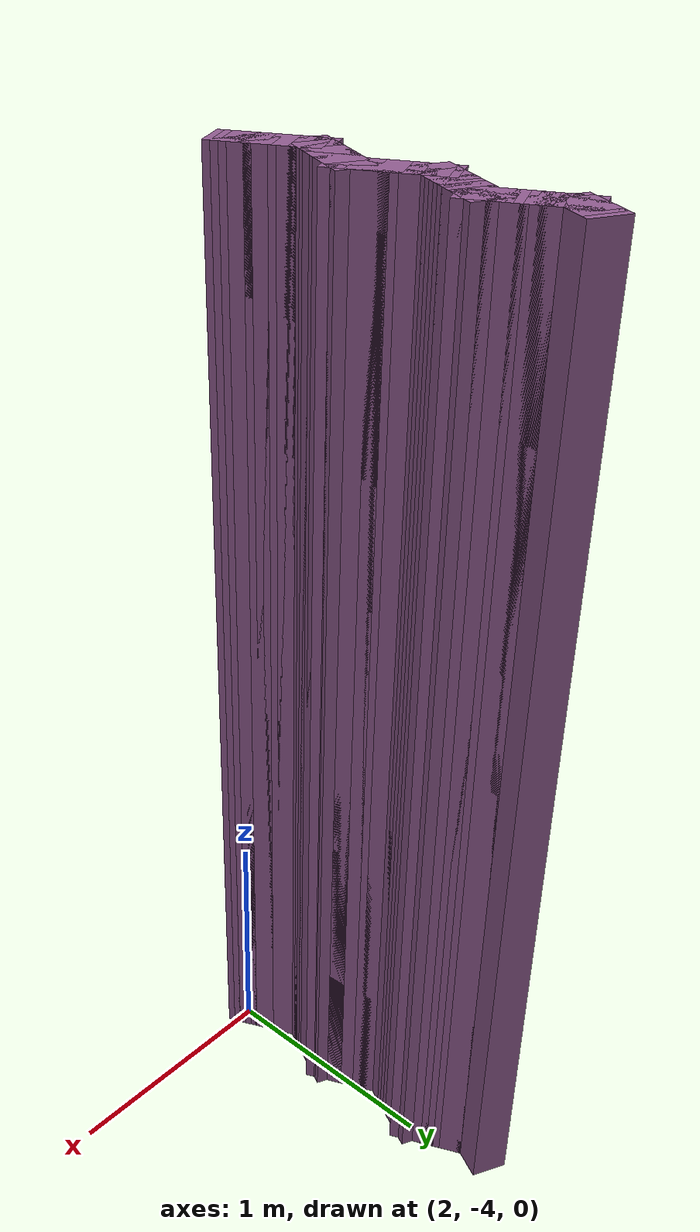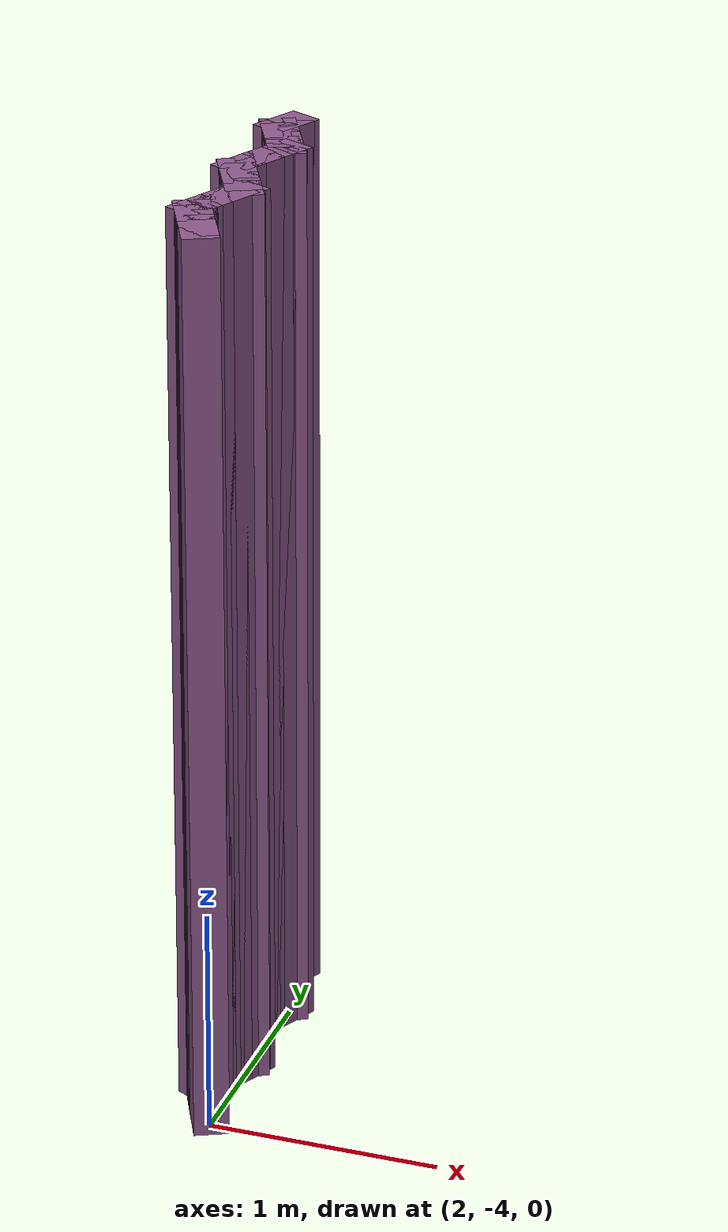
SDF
<sdf version="1.9">
 <world name="p5_serrated">
  <model name="wall_000">
   <static>true</static>
   <pose>1.9940 -3.9875 2.0000 0 0 2.01832</pose>
   <link name="link">
    <collision name="c"><geometry><box><size>0.1777 0.1500 4.0000</size></box></geometry></collision>
    <visual name="v">
     <geometry><box><size>0.1777 0.1500 4.0000</size></box></geometry>
     <material><ambient>0.55 0.35 0.55 1</ambient><diffuse>0.55 0.35 0.55 1</diffuse></material>
    </visual>
   </link>
  </model>
  <model name="wall_001">
   <static>true</static>
   <pose>1.9820 -3.9625 2.0000 0 0 2.01832</pose>
   <link name="link">
    <collision name="c"><geometry><box><size>0.1777 0.1500 4.0000</size></box></geometry></collision>
    <visual name="v">
     <geometry><box><size>0.1777 0.1500 4.0000</size></box></geometry>
     <material><ambient>0.55 0.35 0.55 1</ambient><diffuse>0.55 0.35 0.55 1</diffuse></material>
    </visual>
   </link>
  </model>
  <model name="wall_002">
   <static>true</static>
   <pose>1.9700 -3.9375 2.0000 0 0 2.01832</pose>
   <link name="link">
    <collision name="c"><geometry><box><size>0.1777 0.1500 4.0000</size></box></geometry></collision>
    <visual name="v">
     <geometry><box><size>0.1777 0.1500 4.0000</size></box></geometry>
     <material><ambient>0.55 0.35 0.55 1</ambient><diffuse>0.55 0.35 0.55 1</diffuse></material>
    </visual>
   </link>
  </model>
  <model name="wall_003">
   <static>true</static>
   <pose>1.9580 -3.9125 2.0000 0 0 2.01832</pose>
   <link name="link">
    <collision name="c"><geometry><box><size>0.1777 0.1500 4.0000</size></box></geometry></collision>
    <visual name="v">
     <geometry><box><size>0.1777 0.1500 4.0000</size></box></geometry>
     <material><ambient>0.55 0.35 0.55 1</ambient><diffuse>0.55 0.35 0.55 1</diffuse></material>
    </visual>
   </link>
  </model>
  <model name="wall_004">
   <static>true</static>
   <pose>1.9460 -3.8875 2.0000 0 0 2.01832</pose>
   <link name="link">
    <collision name="c"><geometry><box><size>0.1777 0.1500 4.0000</size></box></geometry></collision>
    <visual name="v">
     <geometry><box><size>0.1777 0.1500 4.0000</size></box></geometry>
     <material><ambient>0.55 0.35 0.55 1</ambient><diffuse>0.55 0.35 0.55 1</diffuse></material>
    </visual>
   </link>
  </model>
  <model name="wall_005">
   <static>true</static>
   <pose>1.9340 -3.8625 2.0000 0 0 2.01832</pose>
   <link name="link">
    <collision name="c"><geometry><box><size>0.1777 0.1500 4.0000</size></box></geometry></collision>
    <visual name="v">
     <geometry><box><size>0.1777 0.1500 4.0000</size></box></geometry>
     <material><ambient>0.55 0.35 0.55 1</ambient><diffuse>0.55 0.35 0.55 1</diffuse></material>
    </visual>
   </link>
  </model>
  <model name="wall_006">
   <static>true</static>
   <pose>1.9220 -3.8375 2.0000 0 0 2.01832</pose>
   <link name="link">
    <collision name="c"><geometry><box><size>0.1777 0.1500 4.0000</size></box></geometry></collision>
    <visual name="v">
     <geometry><box><size>0.1777 0.1500 4.0000</size></box></geometry>
     <material><ambient>0.55 0.35 0.55 1</ambient><diffuse>0.55 0.35 0.55 1</diffuse></material>
    </visual>
   </link>
  </model>
  <model name="wall_007">
   <static>true</static>
   <pose>1.9100 -3.8125 2.0000 0 0 2.01832</pose>
   <link name="link">
    <collision name="c"><geometry><box><size>0.1777 0.1500 4.0000</size></box></geometry></collision>
    <visual name="v">
     <geometry><box><size>0.1777 0.1500 4.0000</size></box></geometry>
     <material><ambient>0.55 0.35 0.55 1</ambient><diffuse>0.55 0.35 0.55 1</diffuse></material>
    </visual>
   </link>
  </model>
  <model name="wall_008">
   <static>true</static>
   <pose>1.8980 -3.7875 2.0000 0 0 2.01832</pose>
   <link name="link">
    <collision name="c"><geometry><box><size>0.1777 0.1500 4.0000</size></box></geometry></collision>
    <visual name="v">
     <geometry><box><size>0.1777 0.1500 4.0000</size></box></geometry>
     <material><ambient>0.55 0.35 0.55 1</ambient><diffuse>0.55 0.35 0.55 1</diffuse></material>
    </visual>
   </link>
  </model>
  <model name="wall_009">
   <static>true</static>
   <pose>1.8860 -3.7625 2.0000 0 0 2.01832</pose>
   <link name="link">
    <collision name="c"><geometry><box><size>0.1777 0.1500 4.0000</size></box></geometry></collision>
    <visual name="v">
     <geometry><box><size>0.1777 0.1500 4.0000</size></box></geometry>
     <material><ambient>0.55 0.35 0.55 1</ambient><diffuse>0.55 0.35 0.55 1</diffuse></material>
    </visual>
   </link>
  </model>
  <model name="wall_010">
   <static>true</static>
   <pose>1.8860 -3.7375 2.0000 0 0 1.12328</pose>
   <link name="link">
    <collision name="c"><geometry><box><size>0.1777 0.1500 4.0000</size></box></geometry></collision>
    <visual name="v">
     <geometry><box><size>0.1777 0.1500 4.0000</size></box></geometry>
     <material><ambient>0.55 0.35 0.55 1</ambient><diffuse>0.55 0.35 0.55 1</diffuse></material>
    </visual>
   </link>
  </model>
  <model name="wall_011">
   <static>true</static>
   <pose>1.8980 -3.7125 2.0000 0 0 1.12328</pose>
   <link name="link">
    <collision name="c"><geometry><box><size>0.1777 0.1500 4.0000</size></box></geometry></collision>
    <visual name="v">
     <geometry><box><size>0.1777 0.1500 4.0000</size></box></geometry>
     <material><ambient>0.55 0.35 0.55 1</ambient><diffuse>0.55 0.35 0.55 1</diffuse></material>
    </visual>
   </link>
  </model>
  <model name="wall_012">
   <static>true</static>
   <pose>1.9100 -3.6875 2.0000 0 0 1.12328</pose>
   <link name="link">
    <collision name="c"><geometry><box><size>0.1777 0.1500 4.0000</size></box></geometry></collision>
    <visual name="v">
     <geometry><box><size>0.1777 0.1500 4.0000</size></box></geometry>
     <material><ambient>0.55 0.35 0.55 1</ambient><diffuse>0.55 0.35 0.55 1</diffuse></material>
    </visual>
   </link>
  </model>
  <model name="wall_013">
   <static>true</static>
   <pose>1.9220 -3.6625 2.0000 0 0 1.12328</pose>
   <link name="link">
    <collision name="c"><geometry><box><size>0.1777 0.1500 4.0000</size></box></geometry></collision>
    <visual name="v">
     <geometry><box><size>0.1777 0.1500 4.0000</size></box></geometry>
     <material><ambient>0.55 0.35 0.55 1</ambient><diffuse>0.55 0.35 0.55 1</diffuse></material>
    </visual>
   </link>
  </model>
  <model name="wall_014">
   <static>true</static>
   <pose>1.9340 -3.6375 2.0000 0 0 1.12328</pose>
   <link name="link">
    <collision name="c"><geometry><box><size>0.1777 0.1500 4.0000</size></box></geometry></collision>
    <visual name="v">
     <geometry><box><size>0.1777 0.1500 4.0000</size></box></geometry>
     <material><ambient>0.55 0.35 0.55 1</ambient><diffuse>0.55 0.35 0.55 1</diffuse></material>
    </visual>
   </link>
  </model>
  <model name="wall_015">
   <static>true</static>
   <pose>1.9460 -3.6125 2.0000 0 0 1.12328</pose>
   <link name="link">
    <collision name="c"><geometry><box><size>0.1777 0.1500 4.0000</size></box></geometry></collision>
    <visual name="v">
     <geometry><box><size>0.1777 0.1500 4.0000</size></box></geometry>
     <material><ambient>0.55 0.35 0.55 1</ambient><diffuse>0.55 0.35 0.55 1</diffuse></material>
    </visual>
   </link>
  </model>
  <model name="wall_016">
   <static>true</static>
   <pose>1.9580 -3.5875 2.0000 0 0 1.12328</pose>
   <link name="link">
    <collision name="c"><geometry><box><size>0.1777 0.1500 4.0000</size></box></geometry></collision>
    <visual name="v">
     <geometry><box><size>0.1777 0.1500 4.0000</size></box></geometry>
     <material><ambient>0.55 0.35 0.55 1</ambient><diffuse>0.55 0.35 0.55 1</diffuse></material>
    </visual>
   </link>
  </model>
  <model name="wall_017">
   <static>true</static>
   <pose>1.9700 -3.5625 2.0000 0 0 1.12328</pose>
   <link name="link">
    <collision name="c"><geometry><box><size>0.1777 0.1500 4.0000</size></box></geometry></collision>
    <visual name="v">
     <geometry><box><size>0.1777 0.1500 4.0000</size></box></geometry>
     <material><ambient>0.55 0.35 0.55 1</ambient><diffuse>0.55 0.35 0.55 1</diffuse></material>
    </visual>
   </link>
  </model>
  <model name="wall_018">
   <static>true</static>
   <pose>1.9820 -3.5375 2.0000 0 0 1.12328</pose>
   <link name="link">
    <collision name="c"><geometry><box><size>0.1777 0.1500 4.0000</size></box></geometry></collision>
    <visual name="v">
     <geometry><box><size>0.1777 0.1500 4.0000</size></box></geometry>
     <material><ambient>0.55 0.35 0.55 1</ambient><diffuse>0.55 0.35 0.55 1</diffuse></material>
    </visual>
   </link>
  </model>
  <model name="wall_019">
   <static>true</static>
   <pose>1.9940 -3.5125 2.0000 0 0 1.12328</pose>
   <link name="link">
    <collision name="c"><geometry><box><size>0.1777 0.1500 4.0000</size></box></geometry></collision>
    <visual name="v">
     <geometry><box><size>0.1777 0.1500 4.0000</size></box></geometry>
     <material><ambient>0.55 0.35 0.55 1</ambient><diffuse>0.55 0.35 0.55 1</diffuse></material>
    </visual>
   </link>
  </model>
  <model name="wall_020">
   <static>true</static>
   <pose>1.9940 -3.4875 2.0000 0 0 2.01832</pose>
   <link name="link">
    <collision name="c"><geometry><box><size>0.1777 0.1500 4.0000</size></box></geometry></collision>
    <visual name="v">
     <geometry><box><size>0.1777 0.1500 4.0000</size></box></geometry>
     <material><ambient>0.55 0.35 0.55 1</ambient><diffuse>0.55 0.35 0.55 1</diffuse></material>
    </visual>
   </link>
  </model>
  <model name="wall_021">
   <static>true</static>
   <pose>1.9820 -3.4625 2.0000 0 0 2.01832</pose>
   <link name="link">
    <collision name="c"><geometry><box><size>0.1777 0.1500 4.0000</size></box></geometry></collision>
    <visual name="v">
     <geometry><box><size>0.1777 0.1500 4.0000</size></box></geometry>
     <material><ambient>0.55 0.35 0.55 1</ambient><diffuse>0.55 0.35 0.55 1</diffuse></material>
    </visual>
   </link>
  </model>
  <model name="wall_022">
   <static>true</static>
   <pose>1.9700 -3.4375 2.0000 0 0 2.01832</pose>
   <link name="link">
    <collision name="c"><geometry><box><size>0.1777 0.1500 4.0000</size></box></geometry></collision>
    <visual name="v">
     <geometry><box><size>0.1777 0.1500 4.0000</size></box></geometry>
     <material><ambient>0.55 0.35 0.55 1</ambient><diffuse>0.55 0.35 0.55 1</diffuse></material>
    </visual>
   </link>
  </model>
  <model name="wall_023">
   <static>true</static>
   <pose>1.9580 -3.4125 2.0000 0 0 2.01832</pose>
   <link name="link">
    <collision name="c"><geometry><box><size>0.1777 0.1500 4.0000</size></box></geometry></collision>
    <visual name="v">
     <geometry><box><size>0.1777 0.1500 4.0000</size></box></geometry>
     <material><ambient>0.55 0.35 0.55 1</ambient><diffuse>0.55 0.35 0.55 1</diffuse></material>
    </visual>
   </link>
  </model>
  <model name="wall_024">
   <static>true</static>
   <pose>1.9460 -3.3875 2.0000 0 0 2.01832</pose>
   <link name="link">
    <collision name="c"><geometry><box><size>0.1777 0.1500 4.0000</size></box></geometry></collision>
    <visual name="v">
     <geometry><box><size>0.1777 0.1500 4.0000</size></box></geometry>
     <material><ambient>0.55 0.35 0.55 1</ambient><diffuse>0.55 0.35 0.55 1</diffuse></material>
    </visual>
   </link>
  </model>
  <model name="wall_025">
   <static>true</static>
   <pose>1.9340 -3.3625 2.0000 0 0 2.01832</pose>
   <link name="link">
    <collision name="c"><geometry><box><size>0.1777 0.1500 4.0000</size></box></geometry></collision>
    <visual name="v">
     <geometry><box><size>0.1777 0.1500 4.0000</size></box></geometry>
     <material><ambient>0.55 0.35 0.55 1</ambient><diffuse>0.55 0.35 0.55 1</diffuse></material>
    </visual>
   </link>
  </model>
  <model name="wall_026">
   <static>true</static>
   <pose>1.9220 -3.3375 2.0000 0 0 2.01832</pose>
   <link name="link">
    <collision name="c"><geometry><box><size>0.1777 0.1500 4.0000</size></box></geometry></collision>
    <visual name="v">
     <geometry><box><size>0.1777 0.1500 4.0000</size></box></geometry>
     <material><ambient>0.55 0.35 0.55 1</ambient><diffuse>0.55 0.35 0.55 1</diffuse></material>
    </visual>
   </link>
  </model>
  <model name="wall_027">
   <static>true</static>
   <pose>1.9100 -3.3125 2.0000 0 0 2.01832</pose>
   <link name="link">
    <collision name="c"><geometry><box><size>0.1777 0.1500 4.0000</size></box></geometry></collision>
    <visual name="v">
     <geometry><box><size>0.1777 0.1500 4.0000</size></box></geometry>
     <material><ambient>0.55 0.35 0.55 1</ambient><diffuse>0.55 0.35 0.55 1</diffuse></material>
    </visual>
   </link>
  </model>
  <model name="wall_028">
   <static>true</static>
   <pose>1.8980 -3.2875 2.0000 0 0 2.01832</pose>
   <link name="link">
    <collision name="c"><geometry><box><size>0.1777 0.1500 4.0000</size></box></geometry></collision>
    <visual name="v">
     <geometry><box><size>0.1777 0.1500 4.0000</size></box></geometry>
     <material><ambient>0.55 0.35 0.55 1</ambient><diffuse>0.55 0.35 0.55 1</diffuse></material>
    </visual>
   </link>
  </model>
  <model name="wall_029">
   <static>true</static>
   <pose>1.8860 -3.2625 2.0000 0 0 2.01832</pose>
   <link name="link">
    <collision name="c"><geometry><box><size>0.1777 0.1500 4.0000</size></box></geometry></collision>
    <visual name="v">
     <geometry><box><size>0.1777 0.1500 4.0000</size></box></geometry>
     <material><ambient>0.55 0.35 0.55 1</ambient><diffuse>0.55 0.35 0.55 1</diffuse></material>
    </visual>
   </link>
  </model>
  <model name="wall_030">
   <static>true</static>
   <pose>1.8860 -3.2375 2.0000 0 0 1.12328</pose>
   <link name="link">
    <collision name="c"><geometry><box><size>0.1777 0.1500 4.0000</size></box></geometry></collision>
    <visual name="v">
     <geometry><box><size>0.1777 0.1500 4.0000</size></box></geometry>
     <material><ambient>0.55 0.35 0.55 1</ambient><diffuse>0.55 0.35 0.55 1</diffuse></material>
    </visual>
   </link>
  </model>
  <model name="wall_031">
   <static>true</static>
   <pose>1.8980 -3.2125 2.0000 0 0 1.12328</pose>
   <link name="link">
    <collision name="c"><geometry><box><size>0.1777 0.1500 4.0000</size></box></geometry></collision>
    <visual name="v">
     <geometry><box><size>0.1777 0.1500 4.0000</size></box></geometry>
     <material><ambient>0.55 0.35 0.55 1</ambient><diffuse>0.55 0.35 0.55 1</diffuse></material>
    </visual>
   </link>
  </model>
  <model name="wall_032">
   <static>true</static>
   <pose>1.9100 -3.1875 2.0000 0 0 1.12328</pose>
   <link name="link">
    <collision name="c"><geometry><box><size>0.1777 0.1500 4.0000</size></box></geometry></collision>
    <visual name="v">
     <geometry><box><size>0.1777 0.1500 4.0000</size></box></geometry>
     <material><ambient>0.55 0.35 0.55 1</ambient><diffuse>0.55 0.35 0.55 1</diffuse></material>
    </visual>
   </link>
  </model>
  <model name="wall_033">
   <static>true</static>
   <pose>1.9220 -3.1625 2.0000 0 0 1.12328</pose>
   <link name="link">
    <collision name="c"><geometry><box><size>0.1777 0.1500 4.0000</size></box></geometry></collision>
    <visual name="v">
     <geometry><box><size>0.1777 0.1500 4.0000</size></box></geometry>
     <material><ambient>0.55 0.35 0.55 1</ambient><diffuse>0.55 0.35 0.55 1</diffuse></material>
    </visual>
   </link>
  </model>
  <model name="wall_034">
   <static>true</static>
   <pose>1.9340 -3.1375 2.0000 0 0 1.12328</pose>
   <link name="link">
    <collision name="c"><geometry><box><size>0.1777 0.1500 4.0000</size></box></geometry></collision>
    <visual name="v">
     <geometry><box><size>0.1777 0.1500 4.0000</size></box></geometry>
     <material><ambient>0.55 0.35 0.55 1</ambient><diffuse>0.55 0.35 0.55 1</diffuse></material>
    </visual>
   </link>
  </model>
  <model name="wall_035">
   <static>true</static>
   <pose>1.9460 -3.1125 2.0000 0 0 1.12328</pose>
   <link name="link">
    <collision name="c"><geometry><box><size>0.1777 0.1500 4.0000</size></box></geometry></collision>
    <visual name="v">
     <geometry><box><size>0.1777 0.1500 4.0000</size></box></geometry>
     <material><ambient>0.55 0.35 0.55 1</ambient><diffuse>0.55 0.35 0.55 1</diffuse></material>
    </visual>
   </link>
  </model>
  <model name="wall_036">
   <static>true</static>
   <pose>1.9580 -3.0875 2.0000 0 0 1.12328</pose>
   <link name="link">
    <collision name="c"><geometry><box><size>0.1777 0.1500 4.0000</size></box></geometry></collision>
    <visual name="v">
     <geometry><box><size>0.1777 0.1500 4.0000</size></box></geometry>
     <material><ambient>0.55 0.35 0.55 1</ambient><diffuse>0.55 0.35 0.55 1</diffuse></material>
    </visual>
   </link>
  </model>
  <model name="wall_037">
   <static>true</static>
   <pose>1.9700 -3.0625 2.0000 0 0 1.12328</pose>
   <link name="link">
    <collision name="c"><geometry><box><size>0.1777 0.1500 4.0000</size></box></geometry></collision>
    <visual name="v">
     <geometry><box><size>0.1777 0.1500 4.0000</size></box></geometry>
     <material><ambient>0.55 0.35 0.55 1</ambient><diffuse>0.55 0.35 0.55 1</diffuse></material>
    </visual>
   </link>
  </model>
  <model name="wall_038">
   <static>true</static>
   <pose>1.9820 -3.0375 2.0000 0 0 1.12328</pose>
   <link name="link">
    <collision name="c"><geometry><box><size>0.1777 0.1500 4.0000</size></box></geometry></collision>
    <visual name="v">
     <geometry><box><size>0.1777 0.1500 4.0000</size></box></geometry>
     <material><ambient>0.55 0.35 0.55 1</ambient><diffuse>0.55 0.35 0.55 1</diffuse></material>
    </visual>
   </link>
  </model>
  <model name="wall_039">
   <static>true</static>
   <pose>1.9940 -3.0125 2.0000 0 0 1.12328</pose>
   <link name="link">
    <collision name="c"><geometry><box><size>0.1777 0.1500 4.0000</size></box></geometry></collision>
    <visual name="v">
     <geometry><box><size>0.1777 0.1500 4.0000</size></box></geometry>
     <material><ambient>0.55 0.35 0.55 1</ambient><diffuse>0.55 0.35 0.55 1</diffuse></material>
    </visual>
   </link>
  </model>
  <model name="wall_040">
   <static>true</static>
   <pose>1.9940 -2.9875 2.0000 0 0 2.01832</pose>
   <link name="link">
    <collision name="c"><geometry><box><size>0.1777 0.1500 4.0000</size></box></geometry></collision>
    <visual name="v">
     <geometry><box><size>0.1777 0.1500 4.0000</size></box></geometry>
     <material><ambient>0.55 0.35 0.55 1</ambient><diffuse>0.55 0.35 0.55 1</diffuse></material>
    </visual>
   </link>
  </model>
  <model name="wall_041">
   <static>true</static>
   <pose>1.9820 -2.9625 2.0000 0 0 2.01832</pose>
   <link name="link">
    <collision name="c"><geometry><box><size>0.1777 0.1500 4.0000</size></box></geometry></collision>
    <visual name="v">
     <geometry><box><size>0.1777 0.1500 4.0000</size></box></geometry>
     <material><ambient>0.55 0.35 0.55 1</ambient><diffuse>0.55 0.35 0.55 1</diffuse></material>
    </visual>
   </link>
  </model>
  <model name="wall_042">
   <static>true</static>
   <pose>1.9700 -2.9375 2.0000 0 0 2.01832</pose>
   <link name="link">
    <collision name="c"><geometry><box><size>0.1777 0.1500 4.0000</size></box></geometry></collision>
    <visual name="v">
     <geometry><box><size>0.1777 0.1500 4.0000</size></box></geometry>
     <material><ambient>0.55 0.35 0.55 1</ambient><diffuse>0.55 0.35 0.55 1</diffuse></material>
    </visual>
   </link>
  </model>
  <model name="wall_043">
   <static>true</static>
   <pose>1.9580 -2.9125 2.0000 0 0 2.01832</pose>
   <link name="link">
    <collision name="c"><geometry><box><size>0.1777 0.1500 4.0000</size></box></geometry></collision>
    <visual name="v">
     <geometry><box><size>0.1777 0.1500 4.0000</size></box></geometry>
     <material><ambient>0.55 0.35 0.55 1</ambient><diffuse>0.55 0.35 0.55 1</diffuse></material>
    </visual>
   </link>
  </model>
  <model name="wall_044">
   <static>true</static>
   <pose>1.9460 -2.8875 2.0000 0 0 2.01832</pose>
   <link name="link">
    <collision name="c"><geometry><box><size>0.1777 0.1500 4.0000</size></box></geometry></collision>
    <visual name="v">
     <geometry><box><size>0.1777 0.1500 4.0000</size></box></geometry>
     <material><ambient>0.55 0.35 0.55 1</ambient><diffuse>0.55 0.35 0.55 1</diffuse></material>
    </visual>
   </link>
  </model>
  <model name="wall_045">
   <static>true</static>
   <pose>1.9340 -2.8625 2.0000 0 0 2.01832</pose>
   <link name="link">
    <collision name="c"><geometry><box><size>0.1777 0.1500 4.0000</size></box></geometry></collision>
    <visual name="v">
     <geometry><box><size>0.1777 0.1500 4.0000</size></box></geometry>
     <material><ambient>0.55 0.35 0.55 1</ambient><diffuse>0.55 0.35 0.55 1</diffuse></material>
    </visual>
   </link>
  </model>
  <model name="wall_046">
   <static>true</static>
   <pose>1.9220 -2.8375 2.0000 0 0 2.01832</pose>
   <link name="link">
    <collision name="c"><geometry><box><size>0.1777 0.1500 4.0000</size></box></geometry></collision>
    <visual name="v">
     <geometry><box><size>0.1777 0.1500 4.0000</size></box></geometry>
     <material><ambient>0.55 0.35 0.55 1</ambient><diffuse>0.55 0.35 0.55 1</diffuse></material>
    </visual>
   </link>
  </model>
  <model name="wall_047">
   <static>true</static>
   <pose>1.9100 -2.8125 2.0000 0 0 2.01832</pose>
   <link name="link">
    <collision name="c"><geometry><box><size>0.1777 0.1500 4.0000</size></box></geometry></collision>
    <visual name="v">
     <geometry><box><size>0.1777 0.1500 4.0000</size></box></geometry>
     <material><ambient>0.55 0.35 0.55 1</ambient><diffuse>0.55 0.35 0.55 1</diffuse></material>
    </visual>
   </link>
  </model>
  <model name="wall_048">
   <static>true</static>
   <pose>1.8980 -2.7875 2.0000 0 0 2.01832</pose>
   <link name="link">
    <collision name="c"><geometry><box><size>0.1777 0.1500 4.0000</size></box></geometry></collision>
    <visual name="v">
     <geometry><box><size>0.1777 0.1500 4.0000</size></box></geometry>
     <material><ambient>0.55 0.35 0.55 1</ambient><diffuse>0.55 0.35 0.55 1</diffuse></material>
    </visual>
   </link>
  </model>
  <model name="wall_049">
   <static>true</static>
   <pose>1.8860 -2.7625 2.0000 0 0 2.01832</pose>
   <link name="link">
    <collision name="c"><geometry><box><size>0.1777 0.1500 4.0000</size></box></geometry></collision>
    <visual name="v">
     <geometry><box><size>0.1777 0.1500 4.0000</size></box></geometry>
     <material><ambient>0.55 0.35 0.55 1</ambient><diffuse>0.55 0.35 0.55 1</diffuse></material>
    </visual>
   </link>
  </model>
  <model name="wall_050">
   <static>true</static>
   <pose>1.8860 -2.7375 2.0000 0 0 1.12328</pose>
   <link name="link">
    <collision name="c"><geometry><box><size>0.1777 0.1500 4.0000</size></box></geometry></collision>
    <visual name="v">
     <geometry><box><size>0.1777 0.1500 4.0000</size></box></geometry>
     <material><ambient>0.55 0.35 0.55 1</ambient><diffuse>0.55 0.35 0.55 1</diffuse></material>
    </visual>
   </link>
  </model>
  <model name="wall_051">
   <static>true</static>
   <pose>1.8980 -2.7125 2.0000 0 0 1.12328</pose>
   <link name="link">
    <collision name="c"><geometry><box><size>0.1777 0.1500 4.0000</size></box></geometry></collision>
    <visual name="v">
     <geometry><box><size>0.1777 0.1500 4.0000</size></box></geometry>
     <material><ambient>0.55 0.35 0.55 1</ambient><diffuse>0.55 0.35 0.55 1</diffuse></material>
    </visual>
   </link>
  </model>
  <model name="wall_052">
   <static>true</static>
   <pose>1.9100 -2.6875 2.0000 0 0 1.12328</pose>
   <link name="link">
    <collision name="c"><geometry><box><size>0.1777 0.1500 4.0000</size></box></geometry></collision>
    <visual name="v">
     <geometry><box><size>0.1777 0.1500 4.0000</size></box></geometry>
     <material><ambient>0.55 0.35 0.55 1</ambient><diffuse>0.55 0.35 0.55 1</diffuse></material>
    </visual>
   </link>
  </model>
 </world>
</sdf>
